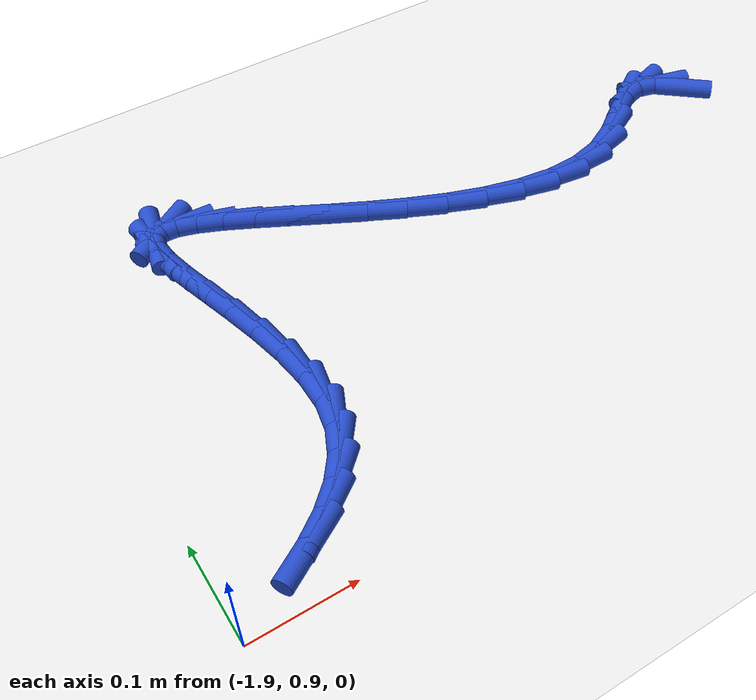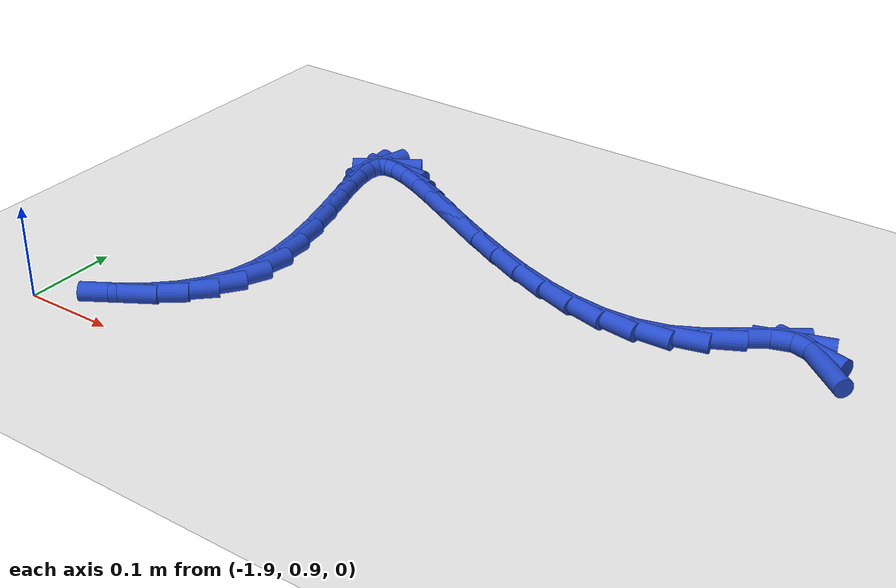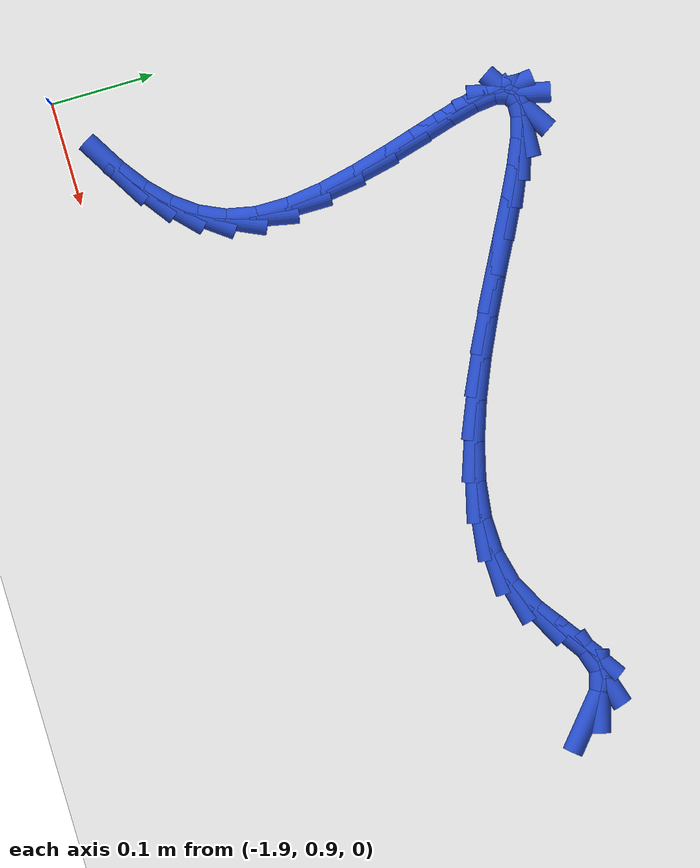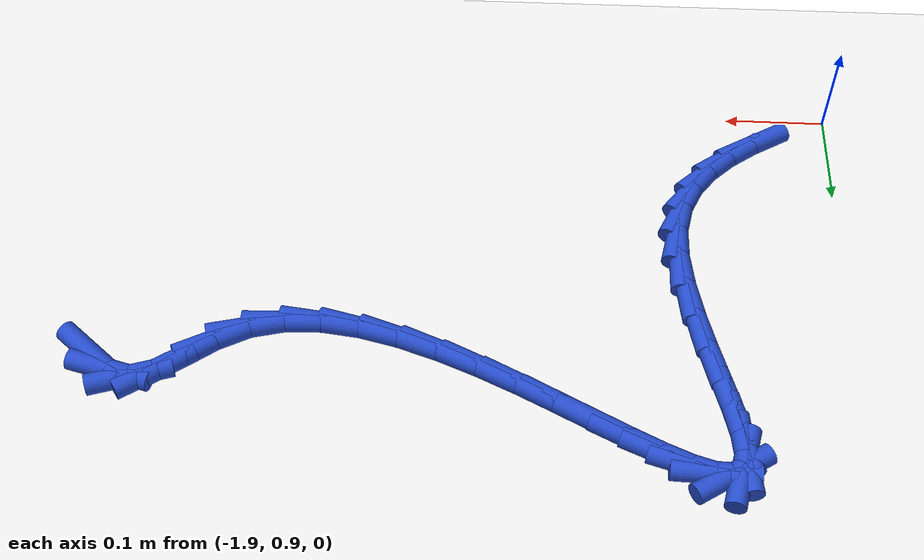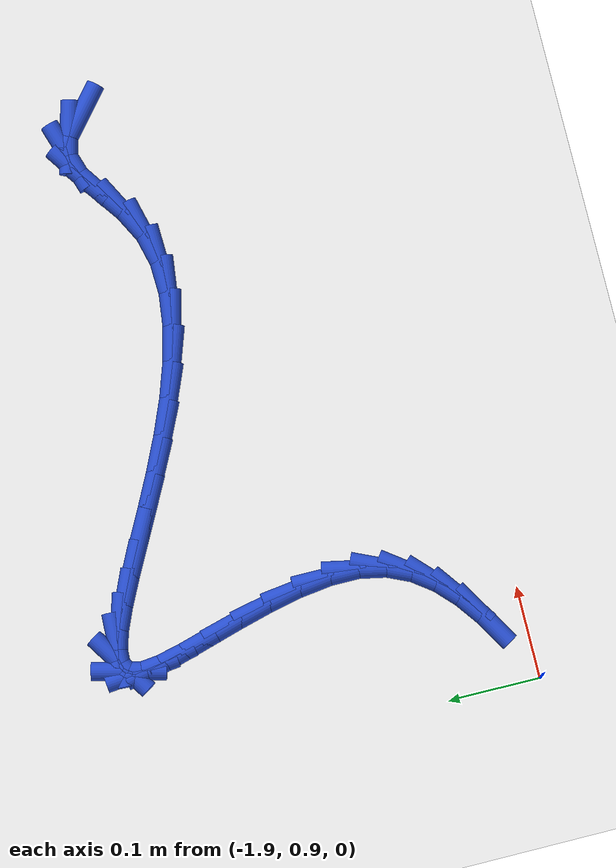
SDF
<sdf version="1.6">
 <world name="default">
  <model name="ground_plane">
   <static>1</static>
   <link name="link">
    <collision name="collision">
     <geometry><plane><normal>0 0 1</normal><size>100 100</size></plane></geometry>
     <surface><friction><ode><mu>100</mu><mu2>50</mu2></ode></friction></surface>
    </collision>
    <visual name="visual">
     <cast_shadows>0</cast_shadows>
     <geometry><plane><normal>0 0 1</normal><size>100 100</size></plane></geometry>
     <material>
      <script><uri>file://media/materials/scripts/gazebo.material</uri><name>Gazebo/WhiteGlow</name></script>
     </material>
    </visual>
   </link>
  </model>
  <model name="line">
   <link name="link_75">
    <pose>-1.1993101788151712 1.2277094720942774 0.01 0 1.57 -0.7036803366325834</pose>
    <collision name="collision">
     <geometry><cylinder><radius>0.01</radius><length>0.08</length></cylinder></geometry>
    </collision>
    <visual name="visual">
     <material>
      <script><name>Gazebo/Blue</name><uri>file://media/materials/scripts/gazebo.material</uri></script>
     </material>
     <geometry><cylinder><radius>0.01</radius><length>0.08</length></cylinder></geometry>
    </visual>
   </link>
   <link name="link_76">
    <pose>-1.2174662076498177 1.2431166658660546 0.01 0 1.57 -0.26236859524011324</pose>
    <collision name="collision">
     <geometry><cylinder><radius>0.01</radius><length>0.08</length></cylinder></geometry>
    </collision>
    <visual name="visual">
     <material>
      <script><name>Gazebo/Blue</name><uri>file://media/materials/scripts/gazebo.material</uri></script>
     </material>
     <geometry><cylinder><radius>0.01</radius><length>0.08</length></cylinder></geometry>
    </visual>
   </link>
   <link name="link_77">
    <pose>-1.2371390648748977 1.2483999958168206 0.01 0 1.57 0.30351418957976667</pose>
    <collision name="collision">
     <geometry><cylinder><radius>0.01</radius><length>0.08</length></cylinder></geometry>
    </collision>
    <visual name="visual">
     <material>
      <script><name>Gazebo/Blue</name><uri>file://media/materials/scripts/gazebo.material</uri></script>
     </material>
     <geometry><cylinder><radius>0.01</radius><length>0.08</length></cylinder></geometry>
    </visual>
   </link>
   <link name="link_78">
    <pose>-1.2587866335669016 1.2416201739853212 0.01 0 1.57 0.5999200349253134</pose>
    <collision name="collision">
     <geometry><cylinder><radius>0.01</radius><length>0.08</length></cylinder></geometry>
    </collision>
    <visual name="visual">
     <material>
      <script><name>Gazebo/Blue</name><uri>file://media/materials/scripts/gazebo.material</uri></script>
     </material>
     <geometry><cylinder><radius>0.01</radius><length>0.08</length></cylinder></geometry>
    </visual>
   </link>
   <link name="link_79">
    <pose>-1.282775947072544 1.225211017613069 0.01 0 1.57 0.6281118453992877</pose>
    <collision name="collision">
     <geometry><cylinder><radius>0.01</radius><length>0.08</length></cylinder></geometry>
    </collision>
    <visual name="visual">
     <material>
      <script><name>Gazebo/Blue</name><uri>file://media/materials/scripts/gazebo.material</uri></script>
     </material>
     <geometry><cylinder><radius>0.01</radius><length>0.08</length></cylinder></geometry>
    </visual>
   </link>
   <link name="link_80">
    <pose>-1.3093851152821037 1.2058867268436528 0.01 0 1.57 0.4817587960633352</pose>
    <collision name="collision">
     <geometry><cylinder><radius>0.01</radius><length>0.08</length></cylinder></geometry>
    </collision>
    <visual name="visual">
     <material>
      <script><name>Gazebo/Blue</name><uri>file://media/materials/scripts/gazebo.material</uri></script>
     </material>
     <geometry><cylinder><radius>0.01</radius><length>0.08</length></cylinder></geometry>
    </visual>
   </link>
   <link name="link_81">
    <pose>-1.338880247557635 1.1904652444854158 0.01 0 1.57 0.24005734606092832</pose>
    <collision name="collision">
     <geometry><cylinder><radius>0.01</radius><length>0.08</length></cylinder></geometry>
    </collision>
    <visual name="visual">
     <material>
      <script><name>Gazebo/Blue</name><uri>file://media/materials/scripts/gazebo.material</uri></script>
     </material>
     <geometry><cylinder><radius>0.01</radius><length>0.08</length></cylinder></geometry>
    </visual>
   </link>
   <link name="link_82">
    <pose>-1.3711748591095263 1.1825602507271908 0.01 0 1.57 0.03201632605567943</pose>
    <collision name="collision">
     <geometry><cylinder><radius>0.01</radius><length>0.08</length></cylinder></geometry>
    </collision>
    <visual name="visual">
     <material>
      <script><name>Gazebo/Blue</name><uri>file://media/materials/scripts/gazebo.material</uri></script>
     </material>
     <geometry><cylinder><radius>0.01</radius><length>0.08</length></cylinder></geometry>
    </visual>
   </link>
   <link name="link_83">
    <pose>-1.4057058738254748 1.1814543165977203 0.01 0 1.57 -0.12836299108575655</pose>
    <collision name="collision">
     <geometry><cylinder><radius>0.01</radius><length>0.08</length></cylinder></geometry>
    </collision>
    <visual name="visual">
     <material>
      <script><name>Gazebo/Blue</name><uri>file://media/materials/scripts/gazebo.material</uri></script>
     </material>
     <geometry><cylinder><radius>0.01</radius><length>0.08</length></cylinder></geometry>
    </visual>
   </link>
   <link name="link_84">
    <pose>-1.4418764263017394 1.186122946876947 0.01 0 1.57 -0.24789499008367383</pose>
    <collision name="collision">
     <geometry><cylinder><radius>0.01</radius><length>0.08</length></cylinder></geometry>
    </collision>
    <visual name="visual">
     <material>
      <script><name>Gazebo/Blue</name><uri>file://media/materials/scripts/gazebo.material</uri></script>
     </material>
     <geometry><cylinder><radius>0.01</radius><length>0.08</length></cylinder></geometry>
    </visual>
   </link>
   <link name="link_85">
    <pose>-1.4790896511345786 1.1955416463448143 0.01 0 1.57 -0.33581376670339014</pose>
    <collision name="collision">
     <geometry><cylinder><radius>0.01</radius><length>0.08</length></cylinder></geometry>
    </collision>
    <visual name="visual">
     <material>
      <script><name>Gazebo/Blue</name><uri>file://media/materials/scripts/gazebo.material</uri></script>
     </material>
     <geometry><cylinder><radius>0.01</radius><length>0.08</length></cylinder></geometry>
    </visual>
   </link>
   <link name="link_86">
    <pose>-1.5167486829202506 1.2086859197812663 0.01 0 1.57 -0.39971125595177487</pose>
    <collision name="collision">
     <geometry><cylinder><radius>0.01</radius><length>0.08</length></cylinder></geometry>
    </collision>
    <visual name="visual">
     <material>
      <script><name>Gazebo/Blue</name><uri>file://media/materials/scripts/gazebo.material</uri></script>
     </material>
     <geometry><cylinder><radius>0.01</radius><length>0.08</length></cylinder></geometry>
    </visual>
   </link>
   <link name="link_87">
    <pose>-1.5542566562550129 1.2245312719662453 0.01 0 1.57 -0.4447994491516369</pose>
    <collision name="collision">
     <geometry><cylinder><radius>0.01</radius><length>0.08</length></cylinder></geometry>
    </collision>
    <visual name="visual">
     <material>
      <script><name>Gazebo/Blue</name><uri>file://media/materials/scripts/gazebo.material</uri></script>
     </material>
     <geometry><cylinder><radius>0.01</radius><length>0.08</length></cylinder></geometry>
    </visual>
   </link>
   <link name="link_88">
    <pose>-1.5910167057351243 1.2420532076796955 0.01 0 1.57 -0.47412745223688385</pose>
    <collision name="collision">
     <geometry><cylinder><radius>0.01</radius><length>0.08</length></cylinder></geometry>
    </collision>
    <visual name="visual">
     <material>
      <script><name>Gazebo/Blue</name><uri>file://media/materials/scripts/gazebo.material</uri></script>
     </material>
     <geometry><cylinder><radius>0.01</radius><length>0.08</length></cylinder></geometry>
    </visual>
   </link>
   <link name="link_89">
    <pose>-1.6264319659568425 1.2602272317015595 0.01 0 1.57 -0.488771031027032</pose>
    <collision name="collision">
     <geometry><cylinder><radius>0.01</radius><length>0.08</length></cylinder></geometry>
    </collision>
    <visual name="visual">
     <material>
      <script><name>Gazebo/Blue</name><uri>file://media/materials/scripts/gazebo.material</uri></script>
     </material>
     <geometry><cylinder><radius>0.01</radius><length>0.08</length></cylinder></geometry>
    </visual>
   </link>
   <link name="link_90">
    <pose>-1.6599055715164264 1.2780288488117812 0.01 0 1.57 -0.4875887021983019</pose>
    <collision name="collision">
     <geometry><cylinder><radius>0.01</radius><length>0.08</length></cylinder></geometry>
    </collision>
    <visual name="visual">
     <material>
      <script><name>Gazebo/Blue</name><uri>file://media/materials/scripts/gazebo.material</uri></script>
     </material>
     <geometry><cylinder><radius>0.01</radius><length>0.08</length></cylinder></geometry>
    </visual>
   </link>
   <link name="link_91">
    <pose>-1.690840657010134 1.2944335637903037 0.01 0 1.57 -0.466046694790374</pose>
    <collision name="collision">
     <geometry><cylinder><radius>0.01</radius><length>0.08</length></cylinder></geometry>
    </collision>
    <visual name="visual">
     <material>
      <script><name>Gazebo/Blue</name><uri>file://media/materials/scripts/gazebo.material</uri></script>
     </material>
     <geometry><cylinder><radius>0.01</radius><length>0.08</length></cylinder></geometry>
    </visual>
   </link>
   <link name="link_92">
    <pose>-1.7186403570342232 1.308416881417071 0.01 0 1.57 -0.41268647790688856</pose>
    <collision name="collision">
     <geometry><cylinder><radius>0.01</radius><length>0.08</length></cylinder></geometry>
    </collision>
    <visual name="visual">
     <material>
      <script><name>Gazebo/Blue</name><uri>file://media/materials/scripts/gazebo.material</uri></script>
     </material>
     <geometry><cylinder><radius>0.01</radius><length>0.08</length></cylinder></geometry>
    </visual>
   </link>
   <link name="link_93">
    <pose>-1.7427078061849528 1.3189543064720255 0.01 0 1.57 -0.2982075223972733</pose>
    <collision name="collision">
     <geometry><cylinder><radius>0.01</radius><length>0.08</length></cylinder></geometry>
    </collision>
    <visual name="visual">
     <material>
      <script><name>Gazebo/Blue</name><uri>file://media/materials/scripts/gazebo.material</uri></script>
     </material>
     <geometry><cylinder><radius>0.01</radius><length>0.08</length></cylinder></geometry>
    </visual>
   </link>
   <link name="link_94">
    <pose>-1.7624461390585804 1.325021343735111 0.01 0 1.57 -0.03860764173252142</pose>
    <collision name="collision">
     <geometry><cylinder><radius>0.01</radius><length>0.08</length></cylinder></geometry>
    </collision>
    <visual name="visual">
     <material>
      <script><name>Gazebo/Blue</name><uri>file://media/materials/scripts/gazebo.material</uri></script>
     </material>
     <geometry><cylinder><radius>0.01</radius><length>0.08</length></cylinder></geometry>
    </visual>
   </link>
   <link name="link_95">
    <pose>-1.7772584902513646 1.3255934979862705 0.01 0 1.57 0.569461434225569</pose>
    <collision name="collision">
     <geometry><cylinder><radius>0.01</radius><length>0.08</length></cylinder></geometry>
    </collision>
    <visual name="visual">
     <material>
      <script><name>Gazebo/Blue</name><uri>file://media/materials/scripts/gazebo.material</uri></script>
     </material>
     <geometry><cylinder><radius>0.01</radius><length>0.08</length></cylinder></geometry>
    </visual>
   </link>
   <link name="link_96">
    <pose>-1.7865479943595635 1.319646274005448 0.01 0 1.57 1.3315008635744712</pose>
    <collision name="collision">
     <geometry><cylinder><radius>0.01</radius><length>0.08</length></cylinder></geometry>
    </collision>
    <visual name="visual">
     <material>
      <script><name>Gazebo/Blue</name><uri>file://media/materials/scripts/gazebo.material</uri></script>
     </material>
     <geometry><cylinder><radius>0.01</radius><length>0.08</length></cylinder></geometry>
    </visual>
   </link>
   <link name="link_97">
    <pose>-1.7898125770146784 1.3062651972988257 0.01 0 1.57 -1.4675936677056556</pose>
    <collision name="collision">
     <geometry><cylinder><radius>0.01</radius><length>0.08</length></cylinder></geometry>
    </collision>
    <visual name="visual">
     <material>
      <script><name>Gazebo/Blue</name><uri>file://media/materials/scripts/gazebo.material</uri></script>
     </material>
     <geometry><cylinder><radius>0.01</radius><length>0.08</length></cylinder></geometry>
    </visual>
   </link>
   <link name="link_98">
    <pose>-1.7877003090937142 1.2858707277877082 0.01 0 1.57 -1.3420824269377567</pose>
    <collision name="collision">
     <geometry><cylinder><radius>0.01</radius><length>0.08</length></cylinder></geometry>
    </collision>
    <visual name="visual">
     <material>
      <script><name>Gazebo/Blue</name><uri>file://media/materials/scripts/gazebo.material</uri></script>
     </material>
     <geometry><cylinder><radius>0.01</radius><length>0.08</length></cylinder></geometry>
    </visual>
   </link>
   <link name="link_99">
    <pose>-1.7816248379661814 1.259771903954455 0.01 0 1.57 -1.2954369511541077</pose>
    <collision name="collision">
     <geometry><cylinder><radius>0.01</radius><length>0.08</length></cylinder></geometry>
    </collision>
    <visual name="visual">
     <material>
      <script><name>Gazebo/Blue</name><uri>file://media/materials/scripts/gazebo.material</uri></script>
     </material>
     <geometry><cylinder><radius>0.01</radius><length>0.08</length></cylinder></geometry>
    </visual>
   </link>
   <link name="link_100">
    <pose>-1.7730136714993903 1.229293851689164 0.01 0 1.57 -1.2886756544799323</pose>
    <collision name="collision">
     <geometry><cylinder><radius>0.01</radius><length>0.08</length></cylinder></geometry>
    </collision>
    <visual name="visual">
     <material>
      <script><name>Gazebo/Blue</name><uri>file://media/materials/scripts/gazebo.material</uri></script>
     </material>
     <geometry><cylinder><radius>0.01</radius><length>0.08</length></cylinder></geometry>
    </visual>
   </link>
   <link name="link_101">
    <pose>-1.7632943175606517 1.1957616968819356 0.01 0 1.57 -1.3102716426491048</pose>
    <collision name="collision">
     <geometry><cylinder><radius>0.01</radius><length>0.08</length></cylinder></geometry>
    </collision>
    <visual name="visual">
     <material>
      <script><name>Gazebo/Blue</name><uri>file://media/materials/scripts/gazebo.material</uri></script>
     </material>
     <geometry><cylinder><radius>0.01</radius><length>0.08</length></cylinder></geometry>
    </visual>
   </link>
   <link name="link_102">
    <pose>-1.7538942840172764 1.160500565422869 0.01 0 1.57 -1.359415924728431</pose>
    <collision name="collision">
     <geometry><cylinder><radius>0.01</radius><length>0.08</length></cylinder></geometry>
    </collision>
    <visual name="visual">
     <material>
      <script><name>Gazebo/Blue</name><uri>file://media/materials/scripts/gazebo.material</uri></script>
     </material>
     <geometry><cylinder><radius>0.01</radius><length>0.08</length></cylinder></geometry>
    </visual>
   </link>
   <link name="link_103">
    <pose>-1.7462410787365756 1.1248355832020633 0.01 0 1.57 -1.4425917184776107</pose>
    <collision name="collision">
     <geometry><cylinder><radius>0.01</radius><length>0.08</length></cylinder></geometry>
    </collision>
    <visual name="visual">
     <material>
      <script><name>Gazebo/Blue</name><uri>file://media/materials/scripts/gazebo.material</uri></script>
     </material>
     <geometry><cylinder><radius>0.01</radius><length>0.08</length></cylinder></geometry>
    </visual>
   </link>
   <link name="link_104">
    <pose>-1.7417622095858591 1.090091876109617 0.01 0 1.57 1.5670121897555722</pose>
    <collision name="collision">
     <geometry><cylinder><radius>0.01</radius><length>0.08</length></cylinder></geometry>
    </collision>
    <visual name="visual">
     <material>
      <script><name>Gazebo/Blue</name><uri>file://media/materials/scripts/gazebo.material</uri></script>
     </material>
     <geometry><cylinder><radius>0.01</radius><length>0.08</length></cylinder></geometry>
    </visual>
   </link>
   <link name="link_105">
    <pose>-1.74188518443244 1.0575945700356317 0.01 0 1.57 1.3678237726400093</pose>
    <collision name="collision">
     <geometry><cylinder><radius>0.01</radius><length>0.08</length></cylinder></geometry>
    </collision>
    <visual name="visual">
     <material>
      <script><name>Gazebo/Blue</name><uri>file://media/materials/scripts/gazebo.material</uri></script>
     </material>
     <geometry><cylinder><radius>0.01</radius><length>0.08</length></cylinder></geometry>
    </visual>
   </link>
   <link name="link_106">
    <pose>-1.7478672239035025 1.0285282565532619 0.01 0 1.57 1.1404397204483983</pose>
    <collision name="collision">
     <geometry><cylinder><radius>0.01</radius><length>0.08</length></cylinder></geometry>
    </collision>
    <visual name="visual">
     <material>
      <script><name>Gazebo/Blue</name><uri>file://media/materials/scripts/gazebo.material</uri></script>
     </material>
     <geometry><cylinder><radius>0.01</radius><length>0.08</length></cylinder></geometry>
    </visual>
   </link>
   <link name="link_107">
    <pose>-1.7596063314978234 1.002955795210537 0.01 0 1.57 0.9321802272097268</pose>
    <collision name="collision">
     <geometry><cylinder><radius>0.01</radius><length>0.08</length></cylinder></geometry>
    </collision>
    <visual name="visual">
     <material>
      <script><name>Gazebo/Blue</name><uri>file://media/materials/scripts/gazebo.material</uri></script>
     </material>
     <geometry><cylinder><radius>0.01</radius><length>0.08</length></cylinder></geometry>
    </visual>
   </link>
   <link name="link_108">
    <pose>-1.7763495472130926 0.9804028196839921 0.01 0 1.57 0.7615240301827373</pose>
    <collision name="collision">
     <geometry><cylinder><radius>0.01</radius><length>0.08</length></cylinder></geometry>
    </collision>
    <visual name="visual">
     <material>
      <script><name>Gazebo/Blue</name><uri>file://media/materials/scripts/gazebo.material</uri></script>
     </material>
     <geometry><cylinder><radius>0.01</radius><length>0.08</length></cylinder></geometry>
    </visual>
   </link>
   <link name="link_109">
    <pose>-1.7973398314834195 0.9603915968759955 0.01 0 1.57 0.63261529824748</pose>
    <collision name="collision">
     <geometry><cylinder><radius>0.01</radius><length>0.08</length></cylinder></geometry>
    </collision>
    <visual name="visual">
     <material>
      <script><name>Gazebo/Blue</name><uri>file://media/materials/scripts/gazebo.material</uri></script>
     </material>
     <geometry><cylinder><radius>0.01</radius><length>0.08</length></cylinder></geometry>
    </visual>
   </link>
   <link name="link_110">
    <pose>-1.8218201447429125 0.942444393688915 0.01 0 1.57 0.541308919025036</pose>
    <collision name="collision">
     <geometry><cylinder><radius>0.01</radius><length>0.08</length></cylinder></geometry>
    </collision>
    <visual name="visual">
     <material>
      <script><name>Gazebo/Blue</name><uri>file://media/materials/scripts/gazebo.material</uri></script>
     </material>
     <geometry><cylinder><radius>0.01</radius><length>0.08</length></cylinder></geometry>
    </visual>
   </link>
  </model>
 </world>
</sdf>
